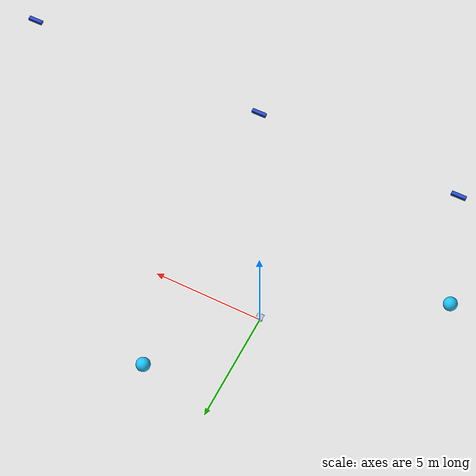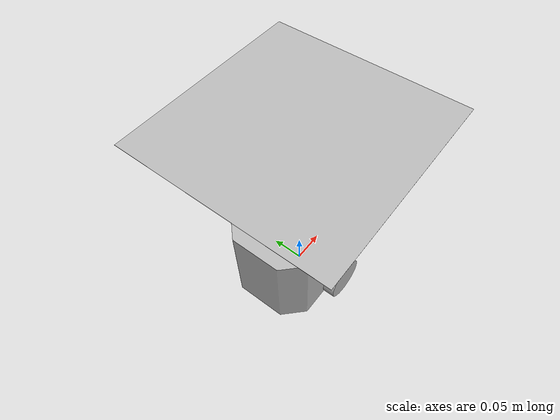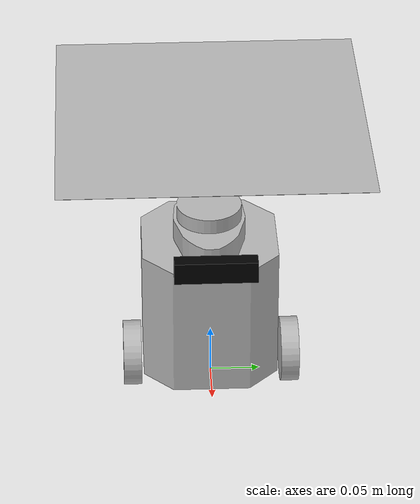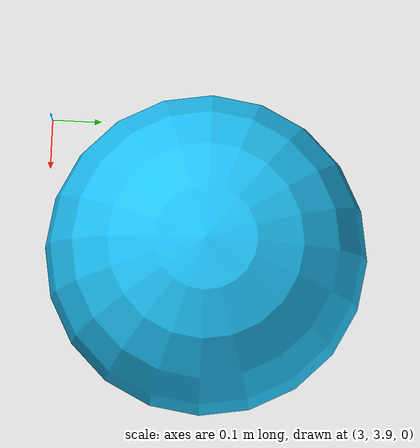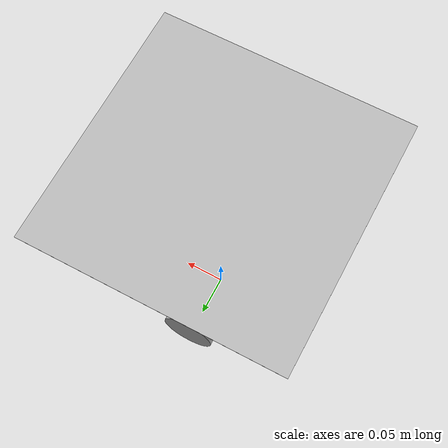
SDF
<sdf version="1.6">
 <world name="default">
  <gravity>0 0 -9.8</gravity>
  <magnetic_field>6e-06 2.3e-05 -4.2e-05</magnetic_field>
  <atmosphere type="adiabatic"/>
  <physics name="default_physics" default="0" type="ode">
   <max_step_size>0.001</max_step_size>
   <real_time_factor>1</real_time_factor>
   <real_time_update_rate>1000</real_time_update_rate>
  </physics>
  <scene>
   <ambient>0.4 0.4 0.4 1</ambient>
   <background>0.7 0.7 0.7 1</background>
   <shadows>false</shadows>
   <grid>false</grid>
   <origin_visual>false</origin_visual>
  </scene>
  <spherical_coordinates>
   <surface_model>EARTH_WGS84</surface_model>
   <latitude_deg>0</latitude_deg>
   <longitude_deg>0</longitude_deg>
   <elevation>0</elevation>
   <heading_deg>0</heading_deg>
  </spherical_coordinates>
  <model name="Ball_01_001">
   <static>true</static>
   <include><uri>model://aws_robomaker_residential_Ball_01</uri></include>
   <pose>3.295503 4.225674 0.318684 0 -0 0</pose>
  </model>
  <model name="Ball_01_003">
   <static>true</static>
   <include><uri>model://aws_robomaker_residential_Ball_01</uri></include>
   <pose>-6.945503 -4.22174 0.318684 0 -0 0</pose>
  </model>
  <light name="LivingRoom_CeilingLight_0" type="point">
   <pose>1.194296 4.155759 11 0 -0 0</pose>
   <diffuse>0.5 0.5 0.5 1</diffuse>
   <specular>0.1 0.1 0.1 1</specular>
   <attenuation>
    <range>20</range>
    <constant>0.32</constant>
    <linear>0.01</linear>
    <quadratic>0.03</quadratic>
   </attenuation>
   <cast_shadows>0</cast_shadows>
   <direction>0 0 -1</direction>
  </light>
  <light name="LivingRoom_CeilingLight_1" type="point">
   <pose>1.194296 -1.589959 5 0 -0 0</pose>
   <diffuse>0.5 0.5 0.5 1</diffuse>
   <specular>0.1 0.1 0.1 1</specular>
   <attenuation>
    <range>20</range>
    <constant>0.05</constant>
    <linear>0.01</linear>
    <quadratic>0.09</quadratic>
   </attenuation>
   <cast_shadows>0</cast_shadows>
   <direction>0 0 -1</direction>
  </light>
  <light name="BedRoom_CeilingLight_0" type="point">
   <pose>-6.451061 -0.692040 5 0 -0 0</pose>
   <diffuse>0.5 0.5 0.5 1</diffuse>
   <specular>0.1 0.1 0.1 1</specular>
   <attenuation>
    <range>20</range>
    <constant>0.32</constant>
    <linear>0.01</linear>
    <quadratic>0.03</quadratic>
   </attenuation>
   <cast_shadows>0</cast_shadows>
   <direction>0 0 -1</direction>
  </light>
  <light name="Kitchen_CeilingLight_0" type="point">
   <pose>7.8582 -1.5905 9 0 -0 0</pose>
   <diffuse>0.5 0.5 0.5 1</diffuse>
   <specular>0.1 0.1 0.1 1</specular>
   <attenuation>
    <range>20</range>
    <constant>0.3</constant>
    <linear>0.01</linear>
    <quadratic>0.01</quadratic>
   </attenuation>
   <cast_shadows>0</cast_shadows>
   <direction>0 0 -1</direction>
  </light>
  <model name="camera">
   <link name="link_0">
    <inertial>
     <mass>0.00707571</mass>
     <inertia>
      <ixx>1.66494e-05</ixx>
      <ixy>0</ixy>
      <ixz>0</ixz>
      <iyy>0.000165453</iyy>
      <iyz>0</iyz>
      <izz>0.000169817</izz>
     </inertia>
     <pose>0 0 30 0 -0 0</pose>
    </inertial>
    <visual name="visual">
     <geometry><box><size>0.519789 0.133487 0.102067</size></box></geometry>
     <material>
      <lighting>1</lighting>
      <script><uri>file://media/materials/scripts/gazebo.material</uri><name>Gazebo/Blue</name></script>
      <shader type="pixel"/>
     </material>
     <cast_shadows>0</cast_shadows>
    </visual>
    <collision name="collision">
     <pose>0 0 30 0 -0 0</pose>
     <geometry><box><size>0.519789 0.133487 0.102067</size></box></geometry>
     <surface>
      <friction>
       <ode><mu>1</mu><mu2>1</mu2><fdir1>0 0 0</fdir1><slip1>0</slip1><slip2>0</slip2></ode>
       <torsional>
        <coefficient>1</coefficient>
        <patch_radius>0</patch_radius>
        <surface_radius>0</surface_radius>
        <use_patch_radius>1</use_patch_radius>
        <ode><slip>0</slip></ode>
       </torsional>
      </friction>
      <bounce><restitution_coefficient>0</restitution_coefficient><threshold>1e+06</threshold></bounce>
      <contact>
       <collide_without_contact>0</collide_without_contact>
       <collide_without_contact_bitmask>1</collide_without_contact_bitmask>
       <collide_bitmask>1</collide_bitmask>
       <ode>
        <soft_cfm>0</soft_cfm>
        <soft_erp>0.2</soft_erp>
        <kp>1e+13</kp>
        <kd>1</kd>
        <max_vel>0.01</max_vel>
        <min_depth>0</min_depth>
       </ode>
       <bullet>
        <split_impulse>1</split_impulse>
        <split_impulse_penetration_threshold>-0.01</split_impulse_penetration_threshold>
        <soft_cfm>0</soft_cfm>
        <soft_erp>0.2</soft_erp>
        <kp>1e+13</kp>
        <kd>1</kd>
       </bullet>
      </contact>
     </surface>
    </collision>
    <sensor name="upper_camera" type="camera">
     <pose>0 0 0 0 1.57 0</pose>
     <always_on>1</always_on>
     <visualize>1</visualize>
     <update_rate>30</update_rate>
     <camera name="Maze_Upper_Camera">
      <horizontal_fov>1.0856</horizontal_fov>
      <image><width>1280</width><height>720</height><format>R8G8B8</format></image>
      <clip><near>0.03</near><far>100</far></clip>
      <noise><type>gaussian</type><mean>0</mean><stddev>0.007</stddev></noise>
     </camera>
     <plugin name="camera_driver" filename="libgazebo_ros_camera.so"/>
    </sensor>
   </link>
   <static>1</static>
   <pose>0 0 15 0 -0 0</pose>
  </model>
  <model name="camera_kitchen">
   <link name="link_0">
    <inertial>
     <mass>0.00707571</mass>
     <inertia>
      <ixx>1.66494e-05</ixx>
      <ixy>0</ixy>
      <ixz>0</ixz>
      <iyy>0.000165453</iyy>
      <iyz>0</iyz>
      <izz>0.000169817</izz>
     </inertia>
     <pose>0 0 30 0 -0 0</pose>
    </inertial>
    <visual name="visual">
     <geometry><box><size>0.519789 0.133487 0.102067</size></box></geometry>
     <material>
      <lighting>1</lighting>
      <script><uri>file://media/materials/scripts/gazebo.material</uri><name>Gazebo/Blue</name></script>
      <shader type="pixel"/>
     </material>
     <cast_shadows>0</cast_shadows>
    </visual>
    <collision name="collision">
     <pose>0 0 30 0 -0 0</pose>
     <geometry><box><size>0.519789 0.133487 0.102067</size></box></geometry>
     <surface>
      <friction>
       <ode><mu>1</mu><mu2>1</mu2><fdir1>0 0 0</fdir1><slip1>0</slip1><slip2>0</slip2></ode>
       <torsional>
        <coefficient>1</coefficient>
        <patch_radius>0</patch_radius>
        <surface_radius>0</surface_radius>
        <use_patch_radius>1</use_patch_radius>
        <ode><slip>0</slip></ode>
       </torsional>
      </friction>
      <bounce><restitution_coefficient>0</restitution_coefficient><threshold>1e+06</threshold></bounce>
      <contact>
       <collide_without_contact>0</collide_without_contact>
       <collide_without_contact_bitmask>1</collide_without_contact_bitmask>
       <collide_bitmask>1</collide_bitmask>
       <ode>
        <soft_cfm>0</soft_cfm>
        <soft_erp>0.2</soft_erp>
        <kp>1e+13</kp>
        <kd>1</kd>
        <max_vel>0.01</max_vel>
        <min_depth>0</min_depth>
       </ode>
       <bullet>
        <split_impulse>1</split_impulse>
        <split_impulse_penetration_threshold>-0.01</split_impulse_penetration_threshold>
        <soft_cfm>0</soft_cfm>
        <soft_erp>0.2</soft_erp>
        <kp>1e+13</kp>
        <kd>1</kd>
       </bullet>
      </contact>
     </surface>
    </collision>
    <sensor name="upper_camera_kitchen" type="camera">
     <pose>0 0 0 0 1.57 0</pose>
     <always_on>1</always_on>
     <visualize>1</visualize>
     <update_rate>30</update_rate>
     <camera name="Maze_Upper_Camera_kitchen">
      <horizontal_fov>1.0856</horizontal_fov>
      <image><width>1280</width><height>720</height><format>R8G8B8</format></image>
      <clip><near>0.03</near><far>100</far></clip>
      <noise><type>gaussian</type><mean>0</mean><stddev>0.007</stddev></noise>
     </camera>
     <plugin name="camera_driver_kitchen" filename="libgazebo_ros_camera.so"/>
    </sensor>
   </link>
   <static>1</static>
   <pose>9 0 15 0 -0 0</pose>
  </model>
  <model name="camera_bedroom">
   <link name="link_0">
    <inertial>
     <mass>0.00707571</mass>
     <inertia>
      <ixx>1.66494e-05</ixx>
      <ixy>0</ixy>
      <ixz>0</ixz>
      <iyy>0.000165453</iyy>
      <iyz>0</iyz>
      <izz>0.000169817</izz>
     </inertia>
     <pose>0 0 30 0 -0 0</pose>
    </inertial>
    <visual name="visual">
     <geometry><box><size>0.519789 0.133487 0.102067</size></box></geometry>
     <material>
      <lighting>1</lighting>
      <script><uri>file://media/materials/scripts/gazebo.material</uri><name>Gazebo/Blue</name></script>
      <shader type="pixel"/>
     </material>
     <cast_shadows>0</cast_shadows>
    </visual>
    <collision name="collision">
     <pose>0 0 30 0 -0 0</pose>
     <geometry><box><size>0.519789 0.133487 0.102067</size></box></geometry>
     <surface>
      <friction>
       <ode><mu>1</mu><mu2>1</mu2><fdir1>0 0 0</fdir1><slip1>0</slip1><slip2>0</slip2></ode>
       <torsional>
        <coefficient>1</coefficient>
        <patch_radius>0</patch_radius>
        <surface_radius>0</surface_radius>
        <use_patch_radius>1</use_patch_radius>
        <ode><slip>0</slip></ode>
       </torsional>
      </friction>
      <bounce><restitution_coefficient>0</restitution_coefficient><threshold>1e+06</threshold></bounce>
      <contact>
       <collide_without_contact>0</collide_without_contact>
       <collide_without_contact_bitmask>1</collide_without_contact_bitmask>
       <collide_bitmask>1</collide_bitmask>
       <ode>
        <soft_cfm>0</soft_cfm>
        <soft_erp>0.2</soft_erp>
        <kp>1e+13</kp>
        <kd>1</kd>
        <max_vel>0.01</max_vel>
        <min_depth>0</min_depth>
       </ode>
       <bullet>
        <split_impulse>1</split_impulse>
        <split_impulse_penetration_threshold>-0.01</split_impulse_penetration_threshold>
        <soft_cfm>0</soft_cfm>
        <soft_erp>0.2</soft_erp>
        <kp>1e+13</kp>
        <kd>1</kd>
       </bullet>
      </contact>
     </surface>
    </collision>
    <sensor name="upper_camera_bedroom" type="camera">
     <pose>0 0 0 0 1.57 0</pose>
     <always_on>1</always_on>
     <visualize>1</visualize>
     <update_rate>30</update_rate>
     <camera name="Maze_Upper_Camera_bedroom">
      <horizontal_fov>1.0856</horizontal_fov>
      <image><width>1280</width><height>720</height><format>R8G8B8</format></image>
      <clip><near>0.03</near><far>100</far></clip>
      <noise><type>gaussian</type><mean>0</mean><stddev>0.007</stddev></noise>
     </camera>
     <plugin name="camera_driver_bedroom" filename="libgazebo_ros_camera.so"/>
    </sensor>
   </link>
   <static>1</static>
   <pose>-7.5 0 15 0 -0 0</pose>
  </model>
  <model name="turtlebot3_burger">
   <link name="base_footprint"/>
   <link name="base_link">
    <inertial>
     <pose>-0.032 0 0.070 0 0 0</pose>
     <inertia>
      <ixx>7.2397393e-01</ixx>
      <ixy>4.686399e-10</ixy>
      <ixz>-1.09525703e-08</ixz>
      <iyy>7.2397393e-01</iyy>
      <iyz>2.8582649e-09</iyz>
      <izz>6.53050163e-01</izz>
     </inertia>
     <mass>8.2573504e-01</mass>
    </inertial>
    <collision name="base_collision">
     <pose>-0.032 0 0.070 0 0 0</pose>
     <geometry><box><size>0.140 0.140 0.140</size></box></geometry>
    </collision>
    <visual name="base_visual">
     <pose>-0.032 0 0 0 0 0</pose>
     <geometry>
      <mesh><uri>model://turtlebot3_common/meshes/burger_base.dae</uri><scale>0.001 0.001 0.001</scale></mesh>
     </geometry>
    </visual>
   </link>
   <link name="imu_link">
    <sensor name="tb3_imu" type="imu">
     <always_on>true</always_on>
     <update_rate>200</update_rate>
     <imu>
      <angular_velocity>
       <x><noise type="gaussian"><mean>0.0</mean><stddev>2e-4</stddev></noise></x>
       <y><noise type="gaussian"><mean>0.0</mean><stddev>2e-4</stddev></noise></y>
       <z><noise type="gaussian"><mean>0.0</mean><stddev>2e-4</stddev></noise></z>
      </angular_velocity>
      <linear_acceleration>
       <x><noise type="gaussian"><mean>0.0</mean><stddev>1.7e-2</stddev></noise></x>
       <y><noise type="gaussian"><mean>0.0</mean><stddev>1.7e-2</stddev></noise></y>
       <z><noise type="gaussian"><mean>0.0</mean><stddev>1.7e-2</stddev></noise></z>
      </linear_acceleration>
     </imu>
     <plugin name="turtlebot3_imu" filename="libgazebo_ros_imu_sensor.so">
      <ros><remapping>~/out:=imu</remapping></ros>
     </plugin>
    </sensor>
   </link>
   <link name="base_scan">
    <inertial>
     <pose>-0.020 0 0.161 0 0 0</pose>
     <inertia>
      <ixx>0.001</ixx>
      <ixy>0.000</ixy>
      <ixz>0.000</ixz>
      <iyy>0.001</iyy>
      <iyz>0.000</iyz>
      <izz>0.001</izz>
     </inertia>
     <mass>0.114</mass>
    </inertial>
    <collision name="lidar_sensor_collision">
     <pose>-0.020 0 0.161 0 0 0</pose>
     <geometry><cylinder><radius>0.0508</radius><length>0.055</length></cylinder></geometry>
    </collision>
    <visual name="lidar_sensor_visual">
     <pose>-0.032 0 0.171 0 0 0</pose>
     <geometry>
      <mesh><uri>model://turtlebot3_common/meshes/lds.dae</uri><scale>0.001 0.001 0.001</scale></mesh>
     </geometry>
    </visual>
    <sensor name="hls_lfcd_lds" type="ray">
     <always_on>true</always_on>
     <visualize>true</visualize>
     <pose>-0.032 0 0.171 0 0 0</pose>
     <update_rate>5</update_rate>
     <ray>
      <scan>
       <horizontal>
        <samples>360</samples>
        <resolution>1.000000</resolution>
        <min_angle>0.000000</min_angle>
        <max_angle>6.280000</max_angle>
       </horizontal>
      </scan>
      <range><min>0.120000</min><max>3.5</max><resolution>0.015000</resolution></range>
      <noise><type>gaussian</type><mean>0.0</mean><stddev>0.01</stddev></noise>
     </ray>
     <plugin name="turtlebot3_laserscan" filename="libgazebo_ros_ray_sensor.so">
      <ros><remapping>~/out:=scan</remapping></ros>
      <output_type>sensor_msgs/LaserScan</output_type>
      <frame_name>base_scan</frame_name>
     </plugin>
    </sensor>
   </link>
   <link name="wheel_left_link">
    <inertial>
     <pose>0 0.08 0.023 -1.57 0 0</pose>
     <inertia>
      <ixx>1.8158194e-03</ixx>
      <ixy>-9.3392e-12</ixy>
      <ixz>1.04909e-11</ixz>
      <iyy>3.2922126e-03</iyy>
      <iyz>5.75694e-11</iyz>
      <izz>1.8158194e-03</izz>
     </inertia>
     <mass>2.8498940e-02</mass>
    </inertial>
    <collision name="wheel_left_collision">
     <pose>0 0.08 0.023 -1.57 0 0</pose>
     <geometry><cylinder><radius>0.033</radius><length>0.018</length></cylinder></geometry>
     <surface>
      <friction>
       <ode><mu>100000.0</mu><mu2>100000.0</mu2><fdir1>0 0 0</fdir1><slip1>0.0</slip1><slip2>0.0</slip2></ode>
      </friction>
      <contact>
       <ode>
        <soft_cfm>0</soft_cfm>
        <soft_erp>0.2</soft_erp>
        <kp>1e+5</kp>
        <kd>1</kd>
        <max_vel>0.01</max_vel>
        <min_depth>0.001</min_depth>
       </ode>
      </contact>
     </surface>
    </collision>
    <visual name="wheel_left_visual">
     <pose>0 0.08 0.023 0 0 0</pose>
     <geometry>
      <mesh><uri>model://turtlebot3_common/meshes/tire.dae</uri><scale>0.001 0.001 0.001</scale></mesh>
     </geometry>
    </visual>
   </link>
   <link name="wheel_right_link">
    <inertial>
     <pose>0.0 -0.08 0.023 -1.57 0 0</pose>
     <inertia>
      <ixx>1.8158194e-03</ixx>
      <ixy>-9.3392e-12</ixy>
      <ixz>1.04909e-11</ixz>
      <iyy>3.2922126e-03</iyy>
      <iyz>5.75694e-11</iyz>
      <izz>1.8158194e-03</izz>
     </inertia>
     <mass>2.8498940e-02</mass>
    </inertial>
    <collision name="wheel_right_collision">
     <pose>0.0 -0.08 0.023 -1.57 0 0</pose>
     <geometry><cylinder><radius>0.033</radius><length>0.018</length></cylinder></geometry>
     <surface>
      <friction>
       <ode><mu>100000.0</mu><mu2>100000.0</mu2><fdir1>0 0 0</fdir1><slip1>0.0</slip1><slip2>0.0</slip2></ode>
      </friction>
      <contact>
       <ode>
        <soft_cfm>0</soft_cfm>
        <soft_erp>0.2</soft_erp>
        <kp>1e+5</kp>
        <kd>1</kd>
        <max_vel>0.01</max_vel>
        <min_depth>0.001</min_depth>
       </ode>
      </contact>
     </surface>
    </collision>
    <visual name="wheel_right_visual">
     <pose>0.0 -0.08 0.023 0 0 0</pose>
     <geometry>
      <mesh><uri>model://turtlebot3_common/meshes/tire.dae</uri><scale>0.001 0.001 0.001</scale></mesh>
     </geometry>
    </visual>
   </link>
   <link name="caster_back_link">
    <pose>-0.081 0 -0.004 -1.57 0 0</pose>
    <inertial>
     <mass>0.005</mass>
     <inertia>
      <ixx>0.001</ixx>
      <ixy>0.000</ixy>
      <ixz>0.000</ixz>
      <iyy>0.001</iyy>
      <iyz>0.000</iyz>
      <izz>0.001</izz>
     </inertia>
    </inertial>
    <collision name="collision">
     <geometry><sphere><radius>0.005000</radius></sphere></geometry>
     <surface>
      <contact>
       <ode>
        <soft_cfm>0</soft_cfm>
        <soft_erp>0.2</soft_erp>
        <kp>1e+5</kp>
        <kd>1</kd>
        <max_vel>0.01</max_vel>
        <min_depth>0.001</min_depth>
       </ode>
      </contact>
     </surface>
    </collision>
   </link>
   <joint name="base_joint" type="fixed">
    <parent>base_footprint</parent>
    <child>base_link</child>
    <pose>0.0 0.0 0.010 0 0 0</pose>
   </joint>
   <joint name="wheel_left_joint" type="revolute">
    <parent>base_link</parent>
    <child>wheel_left_link</child>
    <pose>0.0 0.08 0.023 -1.57 0 0</pose>
    <axis><xyz>0 0 1</xyz></axis>
   </joint>
   <joint name="wheel_right_joint" type="revolute">
    <parent>base_link</parent>
    <child>wheel_right_link</child>
    <pose>0.0 -0.08 0.023 -1.57 0 0</pose>
    <axis><xyz>0 0 1</xyz></axis>
   </joint>
   <joint name="caster_back_joint" type="ball"><parent>base_link</parent><child>caster_back_link</child></joint>
   <joint name="imu_joint" type="fixed">
    <parent>base_link</parent>
    <child>imu_link</child>
    <pose>-0.032 0 0.068 0 0 0</pose>
    <axis><xyz>0 0 1</xyz></axis>
   </joint>
   <joint name="lidar_joint" type="fixed">
    <parent>base_link</parent>
    <child>base_scan</child>
    <pose>-0.032 0 0.171 0 0 0</pose>
    <axis><xyz>0 0 1</xyz></axis>
   </joint>
   <plugin name="turtlebot3_diff_drive" filename="libgazebo_ros_diff_drive.so">
    <update_rate>30</update_rate>
    <left_joint>wheel_left_joint</left_joint>
    <right_joint>wheel_right_joint</right_joint>
    <wheel_separation>0.160</wheel_separation>
    <wheel_diameter>0.066</wheel_diameter>
    <max_wheel_torque>20</max_wheel_torque>
    <max_wheel_acceleration>1.0</max_wheel_acceleration>
    <command_topic>cmd_vel</command_topic>
    <publish_odom>true</publish_odom>
    <publish_odom_tf>true</publish_odom_tf>
    <publish_wheel_tf>false</publish_wheel_tf>
    <odometry_topic>odom</odometry_topic>
    <odometry_frame>odom</odometry_frame>
    <robot_base_frame>base_footprint</robot_base_frame>
   </plugin>
   <plugin name="turtlebot3_joint_state" filename="libgazebo_ros_joint_state_publisher.so">
    <ros><remapping>~/out:=joint_states</remapping></ros>
    <update_rate>30</update_rate>
    <joint_name>wheel_left_joint</joint_name>
    <joint_name>wheel_right_joint</joint_name>
   </plugin>
   <link name="aruco">
    <inertial>
     <pose>0 0 0.3  0 1.57079632679  0</pose>
     <mass>0.001</mass>
     <inertia>
      <ixx>3.7499999999999997e-06</ixx>
      <ixy>0.0</ixy>
      <ixz>0.0</ixz>
      <iyy>1.8750008333333333e-06</iyy>
      <iyz>0.0</iyz>
      <izz>1.8750008333333333e-06</izz>
     </inertia>
    </inertial>
    <visual name="front_visual">
     <pose>0 0 0.3  0 1.57079632679  0</pose>
     <geometry><box><size>0.0002 0.3 0.3</size></box></geometry>
     <material>
      <script>
       <uri>model://aruco_marker/materials/scripts</uri>
       <uri>model://aruco_marker/materials/textures</uri>
       <name>Marker</name>
      </script>
     </material>
    </visual>
    <collision name="collision">
     <pose>0 0 0.3  0 1.57079632679  0</pose>
     <geometry><box><size>0.0002 0.3 0.3</size></box></geometry>
    </collision>
   </link>
   <joint name="uco_to_base_scan_joint" type="fixed">
    <parent>base_scan</parent>
    <child>aruco</child>
    <pose>0 0 3 0 0 0</pose>
   </joint>
   <link name="camera_depth_frame"><pose>0 0 2 0 0 0</pose></link>
   <link name="camera_link">
    <pose>0.12 0 0.0 0 0 0</pose>
    <inertial>
     <pose>0 0 0.3  0 1.57079632679  0</pose>
     <mass>0.001</mass>
     <inertia>
      <ixx>3.7499999999999997e-06</ixx>
      <ixy>0.0</ixy>
      <ixz>0.0</ixz>
      <iyy>1.8750008333333333e-06</iyy>
      <iyz>0.0</iyz>
      <izz>1.8750008333333333e-06</izz>
     </inertia>
    </inertial>
    <visual name="camera_visual">
     <pose>0 0 0.2 0 0 0</pose>
     <geometry><box><size>0.015 0.08 0.022</size></box></geometry>
     <material>
      <ambient>0 0 0 1.0</ambient>
      <diffuse>0 0 0 1.0</diffuse>
      <specular>0.0 0.0 0.0 1.0</specular>
      <emissive>0.0 0.0 0.0 1.0</emissive>
     </material>
    </visual>
    <sensor name="depth_camera" type="depth">
     <always_on>true</always_on>
     <visualize>true</visualize>
     <update_rate>5</update_rate>
     <camera name="camera">
      <horizontal_fov>1.02974</horizontal_fov>
      <image><width>640</width><height>480</height><format>R8G8B8</format></image>
      <clip><near>0.02</near><far>10</far></clip>
      <noise><type>gaussian</type><mean>0.0</mean><stddev>0.007</stddev></noise>
     </camera>
     <plugin name="depth_camera_controller" filename="libgazebo_ros_camera.so">
      <camera_name>depth_camera</camera_name>
      <frame_name>camera_depth_frame</frame_name>
      <hack_baseline>0</hack_baseline>
      <min_depth>0.001</min_depth>
     </plugin>
    </sensor>
   </link>
   <joint name="base_scan_to_cam" type="fixed">
    <parent>base_scan</parent>
    <child>camera_link</child>
    <pose>0 0 0.2 0 0 0</pose>
   </joint>
  </model>
 </world>
</sdf>

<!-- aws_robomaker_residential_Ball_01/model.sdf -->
<sdf version="1.6">
  <model name="aws_robomaker_residential_Ball_01">
    <link name="link">
      <inertial>
        <mass>0.12</mass>

          <inertia>
            <ixx>0.030752</ixx>
            <ixy>0</ixy>
            <ixz>0</ixz>
            <iyy>0.030752</iyy>
            <iyz>0</iyz>
            <izz>0.030752</izz>
          </inertia>
      </inertial>
      <collision name="collision">

        <geometry>

          <sphere>
            <radius>0.31 </radius>
          </sphere>

        </geometry>

        <surface>
          <friction>
            <ode>
              <mu>0.85</mu>
              <mu2>0.85</mu2>
            </ode>
          </friction>

          <contact>
            <ode>
              <kd>8500</kd>
              <max_vel>5.1</max_vel>
            </ode>
          </contact>
        </surface>

      </collision>
      <visual name="visual">
	    <geometry>

          <sphere>
            <radius>0.31 </radius>
          </sphere>
      </geometry>
          <material>
            <diffuse>0.12 0.76 0.97 1</diffuse>
            <ambient>0.03 0.21 0.27 1</ambient>
          </material>

      <meta> <layer> 1 </layer></meta>
</visual>
    </link>
  </model>
</sdf>
